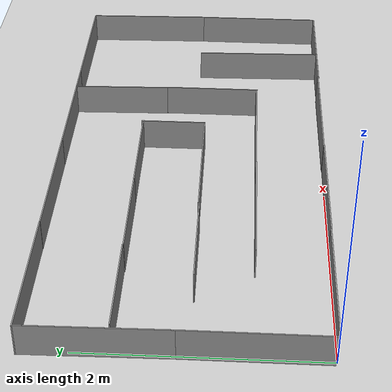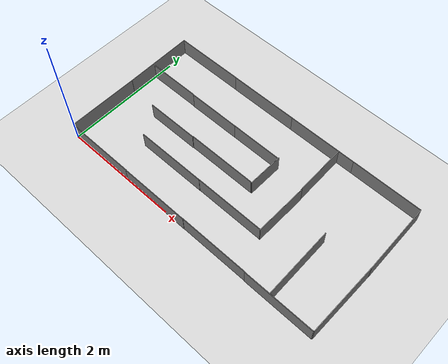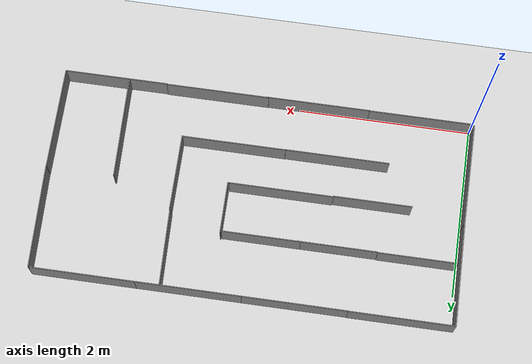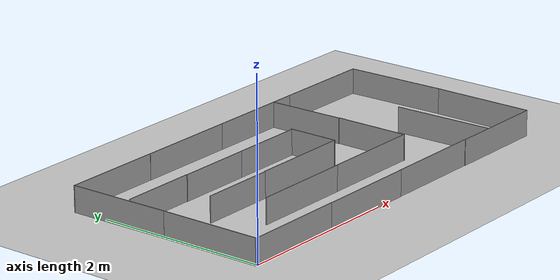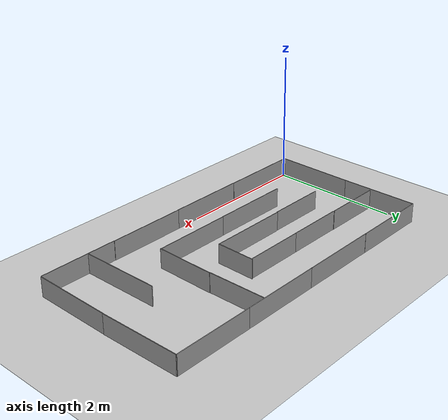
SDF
<sdf version="1.7">
 <world name="default">
  <light name="sun" type="directional">
   <pose>0 0 10 0 -0 0</pose>
   <diffuse>0.8 0.8 0.8 1</diffuse>
   <specular>0.2 0.2 0.2 1</specular>
   <attenuation>
    <range>1000</range>
    <constant>0.9</constant>
    <linear>0.01</linear>
    <quadratic>0.001</quadratic>
   </attenuation>
   <direction>-0.5 0.1 -0.9</direction>
   <spot><inner_angle>0</inner_angle><outer_angle>0</outer_angle><falloff>0</falloff></spot>
  </light>
  <model name="ground_plane">
   <static>1</static>
   <link name="link">
    <collision name="collision">
     <geometry><plane><normal>0 0 1</normal><size>100 100</size></plane></geometry>
     <surface>
      <contact><collide_bitmask>65535</collide_bitmask></contact>
      <friction><ode><mu>100</mu><mu2>50</mu2></ode></friction>
     </surface>
    </collision>
    <visual name="visual">
     <cast_shadows>0</cast_shadows>
     <geometry><plane><normal>0 0 1</normal><size>100 100</size></plane></geometry>
     <material>
      <script><uri>file://media/materials/scripts/gazebo.material</uri><name>Gazebo/Grey</name></script>
     </material>
    </visual>
   </link>
  </model>
  <gravity>0 0 -9.8</gravity>
  <magnetic_field>6e-06 2.3e-05 -4.2e-05</magnetic_field>
  <atmosphere type="adiabatic"/>
  <physics type="ode">
   <max_step_size>0.001</max_step_size>
   <real_time_factor>1</real_time_factor>
   <real_time_update_rate>1000</real_time_update_rate>
  </physics>
  <scene><ambient>0.4 0.4 0.4 1</ambient><background>0.7 0.7 0.7 1</background><shadows>1</shadows></scene>
  <spherical_coordinates>
   <surface_model>EARTH_WGS84</surface_model>
   <latitude_deg>0</latitude_deg>
   <longitude_deg>0</longitude_deg>
   <elevation>0</elevation>
   <heading_deg>0</heading_deg>
  </spherical_coordinates>
  <model name="Wood_1.2">
   <pose>-0.53414 0.088116 0 0 -0 0</pose>
   <link name="Wall_4">
    <collision name="Wall_4_Collision">
     <geometry><box><size>1.2 0.01 0.3</size></box></geometry>
     <pose>0 0 0.15 0 -0 0</pose>
    </collision>
    <visual name="Wall_4_Visual">
     <pose>0 0 0.15 0 -0 0</pose>
     <geometry><box><size>1.2 0.01 0.3</size></box></geometry>
     <material>
      <script><uri>file://media/materials/scripts/gazebo.material</uri><name>Gazebo/Grey</name></script>
      <ambient>1 1 1 1</ambient>
     </material>
     <meta><layer>0</layer></meta>
    </visual>
    <pose>1.13457 -0.08766 0 0 -0 0</pose>
   </link>
   <static>1</static>
  </model>
  <model name="Wood_1.2_0">
   <pose>0.656976 0.085011 0 0 -0 0</pose>
   <link name="Wall_4">
    <collision name="Wall_4_Collision">
     <geometry><box><size>1.2 0.01 0.3</size></box></geometry>
     <pose>0 0 0.15 0 -0 0</pose>
    </collision>
    <visual name="Wall_4_Visual">
     <pose>0 0 0.15 0 -0 0</pose>
     <geometry><box><size>1.2 0.01 0.3</size></box></geometry>
     <material>
      <script><uri>file://media/materials/scripts/gazebo.material</uri><name>Gazebo/Grey</name></script>
      <ambient>1 1 1 1</ambient>
     </material>
     <meta><layer>0</layer></meta>
    </visual>
    <pose>1.13457 -0.08766 0 0 -0 0</pose>
   </link>
   <static>1</static>
  </model>
  <model name="Wood_1.2_1">
   <pose>1.84587 0.088136 0 0 -0 0</pose>
   <link name="Wall_4">
    <collision name="Wall_4_Collision">
     <geometry><box><size>1.2 0.01 0.3</size></box></geometry>
     <pose>0 0 0.15 0 -0 0</pose>
    </collision>
    <visual name="Wall_4_Visual">
     <pose>0 0 0.15 0 -0 0</pose>
     <geometry><box><size>1.2 0.01 0.3</size></box></geometry>
     <material>
      <script><uri>file://media/materials/scripts/gazebo.material</uri><name>Gazebo/Grey</name></script>
      <ambient>1 1 1 1</ambient>
     </material>
     <meta><layer>0</layer></meta>
    </visual>
    <pose>1.13457 -0.08766 0 0 -0 0</pose>
   </link>
   <static>1</static>
  </model>
  <model name="Wood_1.2_2">
   <pose>3.03681 0.082841 0 0 -0 0</pose>
   <link name="Wall_4">
    <collision name="Wall_4_Collision">
     <geometry><box><size>1.2 0.01 0.3</size></box></geometry>
     <pose>0 0 0.15 0 -0 0</pose>
    </collision>
    <visual name="Wall_4_Visual">
     <pose>0 0 0.15 0 -0 0</pose>
     <geometry><box><size>1.2 0.01 0.3</size></box></geometry>
     <material>
      <script><uri>file://media/materials/scripts/gazebo.material</uri><name>Gazebo/Grey</name></script>
      <ambient>1 1 1 1</ambient>
     </material>
     <meta><layer>0</layer></meta>
    </visual>
    <pose>1.13457 -0.08766 0 0 -0 0</pose>
   </link>
   <static>1</static>
  </model>
  <model name="Wood_1.2_3">
   <pose>4.68797 -0.536124 0 0 -0 1.56524</pose>
   <link name="Wall_4">
    <collision name="Wall_4_Collision">
     <geometry><box><size>1.2 0.01 0.3</size></box></geometry>
     <pose>0 0 0.15 0 -0 0</pose>
    </collision>
    <visual name="Wall_4_Visual">
     <pose>0 0 0.15 0 -0 0</pose>
     <geometry><box><size>1.2 0.01 0.3</size></box></geometry>
     <material>
      <script><uri>file://media/materials/scripts/gazebo.material</uri><name>Gazebo/Grey</name></script>
      <ambient>1 1 1 1</ambient>
     </material>
     <meta><layer>0</layer></meta>
    </visual>
    <pose>1.13457 -0.08766 0 0 -0 0</pose>
   </link>
   <static>1</static>
  </model>
  <model name="Wood_1.2_4">
   <pose>4.71057 0.656595 0 0 -0 1.59177</pose>
   <link name="Wall_4">
    <collision name="Wall_4_Collision">
     <geometry><box><size>1.2 0.01 0.3</size></box></geometry>
     <pose>0 0 0.15 0 -0 0</pose>
    </collision>
    <visual name="Wall_4_Visual">
     <pose>0 0 0.15 0 -0 0</pose>
     <geometry><box><size>1.2 0.01 0.3</size></box></geometry>
     <material>
      <script><uri>file://media/materials/scripts/gazebo.material</uri><name>Gazebo/Grey</name></script>
      <ambient>1 1 1 1</ambient>
     </material>
     <meta><layer>0</layer></meta>
    </visual>
    <pose>1.13457 -0.08766 0 0 -0 0</pose>
   </link>
   <static>1</static>
  </model>
  <model name="Wood_1.2_5">
   <pose>3.02246 2.48334 0 0 -0 0</pose>
   <link name="Wall_4">
    <collision name="Wall_4_Collision">
     <geometry><box><size>1.2 0.01 0.3</size></box></geometry>
     <pose>0 0 0.15 0 -0 0</pose>
    </collision>
    <visual name="Wall_4_Visual">
     <pose>0 0 0.15 0 -0 0</pose>
     <geometry><box><size>1.2 0.01 0.3</size></box></geometry>
     <material>
      <script><uri>file://media/materials/scripts/gazebo.material</uri><name>Gazebo/Grey</name></script>
      <ambient>1 1 1 1</ambient>
     </material>
     <meta><layer>0</layer></meta>
    </visual>
    <pose>1.13457 -0.08766 0 0 -0 0</pose>
   </link>
   <static>1</static>
  </model>
  <model name="Wood_1.2_6">
   <pose>1.82419 2.48271 0 0 -0 0</pose>
   <link name="Wall_4">
    <collision name="Wall_4_Collision">
     <geometry><box><size>1.2 0.01 0.3</size></box></geometry>
     <pose>0 0 0.15 0 -0 0</pose>
    </collision>
    <visual name="Wall_4_Visual">
     <pose>0 0 0.15 0 -0 0</pose>
     <geometry><box><size>1.2 0.01 0.3</size></box></geometry>
     <material>
      <script><uri>file://media/materials/scripts/gazebo.material</uri><name>Gazebo/Grey</name></script>
      <ambient>1 1 1 1</ambient>
     </material>
     <meta><layer>0</layer></meta>
    </visual>
    <pose>1.13457 -0.08766 0 0 -0 0</pose>
   </link>
   <static>1</static>
  </model>
  <model name="Wood_1.2_7">
   <pose>0.624406 2.48279 0 0 -0 0</pose>
   <link name="Wall_4">
    <collision name="Wall_4_Collision">
     <geometry><box><size>1.2 0.01 0.3</size></box></geometry>
     <pose>0 0 0.15 0 -0 0</pose>
    </collision>
    <visual name="Wall_4_Visual">
     <pose>0 0 0.15 0 -0 0</pose>
     <geometry><box><size>1.2 0.01 0.3</size></box></geometry>
     <material>
      <script><uri>file://media/materials/scripts/gazebo.material</uri><name>Gazebo/Grey</name></script>
      <ambient>1 1 1 1</ambient>
     </material>
     <meta><layer>0</layer></meta>
    </visual>
    <pose>1.13457 -0.08766 0 0 -0 0</pose>
   </link>
   <static>1</static>
  </model>
  <model name="Wood_1.2_8">
   <pose>-0.572746 2.48472 0 0 -0 0</pose>
   <link name="Wall_4">
    <collision name="Wall_4_Collision">
     <geometry><box><size>1.2 0.01 0.3</size></box></geometry>
     <pose>0 0 0.15 0 -0 0</pose>
    </collision>
    <visual name="Wall_4_Visual">
     <pose>0 0 0.15 0 -0 0</pose>
     <geometry><box><size>1.2 0.01 0.3</size></box></geometry>
     <material>
      <script><uri>file://media/materials/scripts/gazebo.material</uri><name>Gazebo/Grey</name></script>
      <ambient>1 1 1 1</ambient>
     </material>
     <meta><layer>0</layer></meta>
    </visual>
    <pose>1.13457 -0.08766 0 0 -0 0</pose>
   </link>
   <static>1</static>
  </model>
  <model name="Wood_1.2_9">
   <pose>-0.101925 0.661756 0 0 -0 1.58159</pose>
   <link name="Wall_4">
    <collision name="Wall_4_Collision">
     <geometry><box><size>1.2 0.01 0.3</size></box></geometry>
     <pose>0 0 0.15 0 -0 0</pose>
    </collision>
    <visual name="Wall_4_Visual">
     <pose>0 0 0.15 0 -0 0</pose>
     <geometry><box><size>1.2 0.01 0.3</size></box></geometry>
     <material>
      <script><uri>file://media/materials/scripts/gazebo.material</uri><name>Gazebo/Grey</name></script>
      <ambient>1 1 1 1</ambient>
     </material>
     <meta><layer>0</layer></meta>
    </visual>
    <pose>1.13457 -0.08766 0 0 -0 0</pose>
   </link>
   <static>1</static>
  </model>
  <model name="Wood_1.2_10">
   <pose>-0.112399 -0.523957 0 0 -0 1.56787</pose>
   <link name="Wall_4">
    <collision name="Wall_4_Collision">
     <geometry><box><size>1.2 0.01 0.3</size></box></geometry>
     <pose>0 0 0.15 0 -0 0</pose>
    </collision>
    <visual name="Wall_4_Visual">
     <pose>0 0 0.15 0 -0 0</pose>
     <geometry><box><size>1.2 0.01 0.3</size></box></geometry>
     <material>
      <script><uri>file://media/materials/scripts/gazebo.material</uri><name>Gazebo/Grey</name></script>
      <ambient>1 1 1 1</ambient>
     </material>
     <meta><layer>0</layer></meta>
    </visual>
    <pose>1.13457 -0.08766 0 0 -0 0</pose>
   </link>
   <static>1</static>
  </model>
  <model name="Wood_0.9">
   <pose>-0.67204 1.77057 0 0 -0 0</pose>
   <link name="Wall_4">
    <collision name="Wall_4_Collision">
     <geometry><box><size>0.9 0.01 0.3</size></box></geometry>
     <pose>0 0 0.15 0 -0 0</pose>
    </collision>
    <visual name="Wall_4_Visual">
     <pose>0 0 0.15 0 -0 0</pose>
     <geometry><box><size>0.9 0.01 0.3</size></box></geometry>
     <material>
      <script><uri>file://media/materials/scripts/gazebo.material</uri><name>Gazebo/Grey</name></script>
      <ambient>1 1 1 1</ambient>
     </material>
     <meta><layer>0</layer></meta>
    </visual>
    <pose>1.1345 -0.0875 0 0 -0 0</pose>
   </link>
   <static>1</static>
  </model>
  <model name="Wood_0.9_0">
   <pose>0.230604 1.76559 0 0 -0 0</pose>
   <link name="Wall_4">
    <collision name="Wall_4_Collision">
     <geometry><box><size>0.9 0.01 0.3</size></box></geometry>
     <pose>0 0 0.15 0 -0 0</pose>
    </collision>
    <visual name="Wall_4_Visual">
     <pose>0 0 0.15 0 -0 0</pose>
     <geometry><box><size>0.9 0.01 0.3</size></box></geometry>
     <material>
      <script><uri>file://media/materials/scripts/gazebo.material</uri><name>Gazebo/Grey</name></script>
      <ambient>1 1 1 1</ambient>
     </material>
     <meta><layer>0</layer></meta>
    </visual>
    <pose>1.1345 -0.0875 0 0 -0 0</pose>
   </link>
   <static>1</static>
  </model>
  <model name="Wood_0.9_1">
   <pose>1.1015 1.76652 0 0 -0 0</pose>
   <link name="Wall_4">
    <collision name="Wall_4_Collision">
     <geometry><box><size>0.9 0.01 0.3</size></box></geometry>
     <pose>0 0 0.15 0 -0 0</pose>
    </collision>
    <visual name="Wall_4_Visual">
     <pose>0 0 0.15 0 -0 0</pose>
     <geometry><box><size>0.9 0.01 0.3</size></box></geometry>
     <material>
      <script><uri>file://media/materials/scripts/gazebo.material</uri><name>Gazebo/Grey</name></script>
      <ambient>1 1 1 1</ambient>
     </material>
     <meta><layer>0</layer></meta>
    </visual>
    <pose>1.1345 -0.0875 0 0 -0 0</pose>
   </link>
   <static>1</static>
  </model>
  <model name="Wood_0.9_2">
   <pose>3.2283 0.807657 0 0 -0 1.59465</pose>
   <link name="Wall_4">
    <collision name="Wall_4_Collision">
     <geometry><box><size>0.9 0.01 0.3</size></box></geometry>
     <pose>0 0 0.15 0 -0 0</pose>
    </collision>
    <visual name="Wall_4_Visual">
     <pose>0 0 0.15 0 -0 0</pose>
     <geometry><box><size>0.9 0.01 0.3</size></box></geometry>
     <material>
      <script><uri>file://media/materials/scripts/gazebo.material</uri><name>Gazebo/Grey</name></script>
      <ambient>1 1 1 1</ambient>
     </material>
     <meta><layer>0</layer></meta>
    </visual>
    <pose>1.1345 -0.0875 0 0 -0 0</pose>
   </link>
   <static>1</static>
  </model>
  <model name="Wood_0.9_3">
   <pose>3.21095 -0.077488 0 0 -0 1.56637</pose>
   <link name="Wall_4">
    <collision name="Wall_4_Collision">
     <geometry><box><size>0.9 0.01 0.3</size></box></geometry>
     <pose>0 0 0.15 0 -0 0</pose>
    </collision>
    <visual name="Wall_4_Visual">
     <pose>0 0 0.15 0 -0 0</pose>
     <geometry><box><size>0.9 0.01 0.3</size></box></geometry>
     <material>
      <script><uri>file://media/materials/scripts/gazebo.material</uri><name>Gazebo/Grey</name></script>
      <ambient>1 1 1 1</ambient>
     </material>
     <meta><layer>0</layer></meta>
    </visual>
    <pose>1.1345 -0.0875 0 0 -0 0</pose>
   </link>
   <static>1</static>
  </model>
  <model name="Wood_0.6">
   <pose>2.60731 0.261701 0 0 -0 1.568</pose>
   <link name="Wall_4">
    <collision name="Wall_4_Collision">
     <geometry><box><size>0.6 0.01 0.3</size></box></geometry>
     <pose>0 0 0.15 0 -0 0</pose>
    </collision>
    <visual name="Wall_4_Visual">
     <pose>0 0 0.15 0 -0 0</pose>
     <geometry><box><size>0.6 0.01 0.3</size></box></geometry>
     <material>
      <script><uri>file://media/materials/scripts/gazebo.material</uri><name>Gazebo/Grey</name></script>
      <ambient>1 1 1 1</ambient>
     </material>
     <meta><layer>0</layer></meta>
    </visual>
    <pose>1.1345 -0.0875 0 0 -0 0</pose>
   </link>
   <static>1</static>
  </model>
  <model name="Wood_1.2_11">
   <pose>1.56761 0.702905 0 0 -0 0</pose>
   <link name="Wall_4">
    <collision name="Wall_4_Collision">
     <geometry><box><size>1.2 0.01 0.3</size></box></geometry>
     <pose>0 0 0.15 0 -0 0</pose>
    </collision>
    <visual name="Wall_4_Visual">
     <pose>0 0 0.15 0 -0 0</pose>
     <geometry><box><size>1.2 0.01 0.3</size></box></geometry>
     <material>
      <script><uri>file://media/materials/scripts/gazebo.material</uri><name>Gazebo/Grey</name></script>
      <ambient>1 1 1 1</ambient>
     </material>
     <meta><layer>0</layer></meta>
    </visual>
    <pose>1.13457 -0.08766 0 0 -0 0</pose>
   </link>
   <static>1</static>
  </model>
  <model name="Wood_1.2_12">
   <pose>0.949174 1.18813 0 0 -0 0</pose>
   <link name="Wall_4">
    <collision name="Wall_4_Collision">
     <geometry><box><size>1.2 0.01 0.3</size></box></geometry>
     <pose>0 0 0.15 0 -0 0</pose>
    </collision>
    <visual name="Wall_4_Visual">
     <pose>0 0 0.15 0 -0 0</pose>
     <geometry><box><size>1.2 0.01 0.3</size></box></geometry>
     <material>
      <script><uri>file://media/materials/scripts/gazebo.material</uri><name>Gazebo/Grey</name></script>
      <ambient>1 1 1 1</ambient>
     </material>
     <meta><layer>0</layer></meta>
    </visual>
    <pose>1.13457 -0.08766 0 0 -0 0</pose>
   </link>
   <static>1</static>
  </model>
  <model name="Wood_1.2_13">
   <pose>0.365352 0.700905 0 0 -0 0</pose>
   <link name="Wall_4">
    <collision name="Wall_4_Collision">
     <geometry><box><size>1.2 0.01 0.3</size></box></geometry>
     <pose>0 0 0.15 0 -0 0</pose>
    </collision>
    <visual name="Wall_4_Visual">
     <pose>0 0 0.15 0 -0 0</pose>
     <geometry><box><size>1.2 0.01 0.3</size></box></geometry>
     <material>
      <script><uri>file://media/materials/scripts/gazebo.material</uri><name>Gazebo/Grey</name></script>
      <ambient>1 1 1 1</ambient>
     </material>
     <meta><layer>0</layer></meta>
    </visual>
    <pose>1.13457 -0.08766 0 0 -0 0</pose>
   </link>
   <static>1</static>
  </model>
  <model name="Wood_0.9_4">
   <pose>-0.09967 1.18112 0 0 -0 0</pose>
   <link name="Wall_4">
    <collision name="Wall_4_Collision">
     <geometry><box><size>0.9 0.01 0.3</size></box></geometry>
     <pose>0 0 0.15 0 -0 0</pose>
    </collision>
    <visual name="Wall_4_Visual">
     <pose>0 0 0.15 0 -0 0</pose>
     <geometry><box><size>0.9 0.01 0.3</size></box></geometry>
     <material>
      <script><uri>file://media/materials/scripts/gazebo.material</uri><name>Gazebo/Grey</name></script>
      <ambient>1 1 1 1</ambient>
     </material>
     <meta><layer>0</layer></meta>
    </visual>
    <pose>1.1345 -0.0875 0 0 -0 0</pose>
   </link>
   <static>1</static>
  </model>
  <model name="Wood_1.2_14">
   <pose>3.947 -0.540758 0 0 -0 1.58988</pose>
   <link name="Wall_4">
    <collision name="Wall_4_Collision">
     <geometry><box><size>1.2 0.01 0.3</size></box></geometry>
     <pose>0 0 0.15 0 -0 0</pose>
    </collision>
    <visual name="Wall_4_Visual">
     <pose>0 0 0.15 0 -0 0</pose>
     <geometry><box><size>1.2 0.01 0.3</size></box></geometry>
     <material>
      <script><uri>file://media/materials/scripts/gazebo.material</uri><name>Gazebo/Grey</name></script>
      <ambient>1 1 1 1</ambient>
     </material>
     <meta><layer>0</layer></meta>
    </visual>
    <pose>1.13457 -0.08766 0 0 -0 0</pose>
   </link>
   <static>1</static>
  </model>
 </world>
</sdf>
